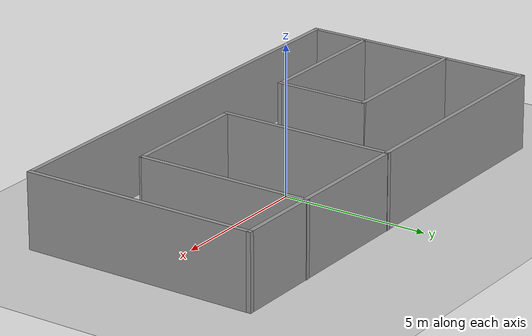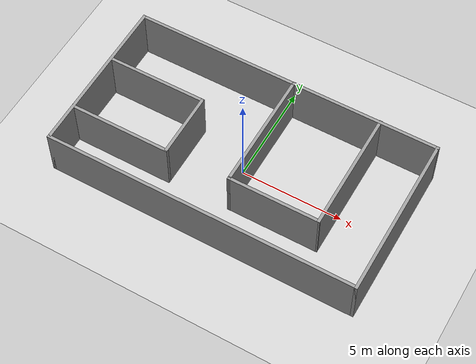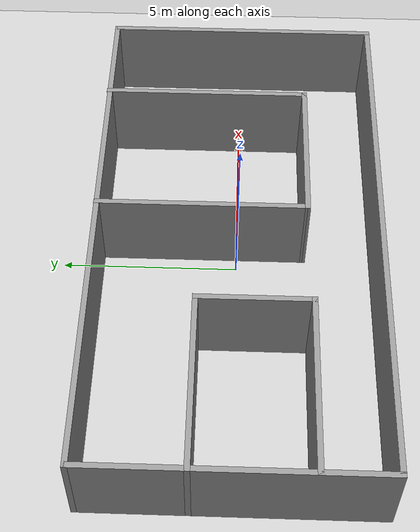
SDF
<sdf version="1.6">
 <world name="default">
  <light name="sun" type="directional">
   <pose>0 0 10 0 -0 0</pose>
   <diffuse>0.8 0.8 0.8 1</diffuse>
   <specular>0.2 0.2 0.2 1</specular>
   <attenuation>
    <range>1000</range>
    <constant>0.9</constant>
    <linear>0.01</linear>
    <quadratic>0.001</quadratic>
   </attenuation>
   <direction>-0.5 0.1 -0.9</direction>
  </light>
  <model name="ground_plane">
   <static>1</static>
   <link name="link">
    <collision name="collision">
     <geometry><plane><normal>0 0 1</normal><size>100 100</size></plane></geometry>
     <surface>
      <contact><collide_bitmask>65535</collide_bitmask></contact>
      <friction><ode><mu>100</mu><mu2>50</mu2></ode></friction>
     </surface>
    </collision>
    <visual name="visual">
     <cast_shadows>0</cast_shadows>
     <geometry><plane><normal>0 0 1</normal><size>100 100</size></plane></geometry>
     <material>
      <script><uri>file://media/materials/scripts/gazebo.material</uri><name>Gazebo/Grey</name></script>
     </material>
    </visual>
   </link>
  </model>
  <gravity>0 0 -9.8</gravity>
  <magnetic_field>6e-06 2.3e-05 -4.2e-05</magnetic_field>
  <atmosphere type="adiabatic"/>
  <physics name="default_physics" default="0" type="ode">
   <max_step_size>0.001</max_step_size>
   <real_time_factor>1</real_time_factor>
   <real_time_update_rate>1000</real_time_update_rate>
  </physics>
  <scene><ambient>0.4 0.4 0.4 1</ambient><background>0.7 0.7 0.7 1</background><shadows>1</shadows></scene>
  <spherical_coordinates>
   <surface_model>EARTH_WGS84</surface_model>
   <latitude_deg>0</latitude_deg>
   <longitude_deg>0</longitude_deg>
   <elevation>0</elevation>
   <heading_deg>0</heading_deg>
  </spherical_coordinates>
  <model name="maze0">
   <link name="Wall_0">
    <collision name="Wall_0_Collision">
     <geometry><box><size>8 0.15 2.5</size></box></geometry>
     <pose>0 0 1.25 0 -0 0</pose>
    </collision>
    <visual name="Wall_0_Visual">
     <pose>0 0 1.25 0 -0 0</pose>
     <geometry><box><size>8 0.15 2.5</size></box></geometry>
     <material>
      <script><uri>file://media/materials/scripts/gazebo.material</uri><name>Gazebo/Grey</name></script>
      <ambient>1 1 1 1</ambient>
     </material>
     <meta><layer>0</layer></meta>
    </visual>
    <pose>-7.55 -0.01 0 0 0 -1.5708</pose>
   </link>
   <link name="Wall_1">
    <collision name="Wall_1_Collision">
     <geometry><box><size>15.25 0.15 2.5</size></box></geometry>
     <pose>0 0 1.25 0 -0 0</pose>
    </collision>
    <visual name="Wall_1_Visual">
     <pose>0 0 1.25 0 -0 0</pose>
     <geometry><box><size>15.25 0.15 2.5</size></box></geometry>
     <material>
      <script><uri>file://media/materials/scripts/gazebo.material</uri><name>Gazebo/Grey</name></script>
      <ambient>1 1 1 1</ambient>
     </material>
     <meta><layer>0</layer></meta>
    </visual>
    <pose>0 -3.935 0 0 -0 0</pose>
   </link>
   <link name="Wall_10">
    <collision name="Wall_10_Collision">
     <geometry><box><size>6 0.15 2.5</size></box></geometry>
     <pose>0 0 1.25 0 -0 0</pose>
    </collision>
    <visual name="Wall_10_Visual">
     <pose>0 0 1.25 0 -0 0</pose>
     <geometry><box><size>6 0.15 2.5</size></box></geometry>
     <material>
      <script><uri>file://media/materials/scripts/gazebo.material</uri><name>Gazebo/Grey</name></script>
      <ambient>1 1 1 1</ambient>
     </material>
     <meta><layer>0</layer></meta>
    </visual>
    <pose>0.41 1 0 0 0 -1.5708</pose>
   </link>
   <link name="Wall_2">
    <collision name="Wall_2_Collision">
     <geometry><box><size>8 0.15 2.5</size></box></geometry>
     <pose>0 0 1.25 0 -0 0</pose>
    </collision>
    <visual name="Wall_2_Visual">
     <pose>0 0 1.25 0 -0 0</pose>
     <geometry><box><size>8 0.15 2.5</size></box></geometry>
     <material>
      <script><uri>file://media/materials/scripts/gazebo.material</uri><name>Gazebo/Grey</name></script>
      <ambient>1 1 1 1</ambient>
     </material>
     <meta><layer>0</layer></meta>
    </visual>
    <pose>7.55 -0.01 0 0 -0 1.5708</pose>
   </link>
   <link name="Wall_22">
    <collision name="Wall_22_Collision">
     <geometry><box><size>6 0.15 2.5</size></box></geometry>
     <pose>0 0 1.25 0 -0 0</pose>
    </collision>
    <visual name="Wall_22_Visual">
     <pose>0 0 1.25 0 -0 0</pose>
     <geometry><box><size>6 0.15 2.5</size></box></geometry>
     <material>
      <script><uri>file://media/materials/scripts/gazebo.material</uri><name>Gazebo/Grey</name></script>
      <ambient>1 1 1 1</ambient>
     </material>
     <meta><layer>0</layer></meta>
    </visual>
    <pose>4.76 1.01 0 0 -0 1.5708</pose>
   </link>
   <link name="Wall_24">
    <collision name="Wall_24_Collision">
     <geometry><box><size>4.50001 0.15 2.5</size></box></geometry>
     <pose>0 0 1.25 0 -0 0</pose>
    </collision>
    <visual name="Wall_24_Visual">
     <pose>0 0 1.25 0 -0 0</pose>
     <geometry><box><size>4.50001 0.15 2.5</size></box></geometry>
     <material>
      <script><uri>file://media/materials/scripts/gazebo.material</uri><name>Gazebo/Grey</name></script>
      <ambient>1 1 1 1</ambient>
     </material>
     <meta><layer>0</layer></meta>
    </visual>
    <pose>2.585 -1.92 0 0 -0 0.002299</pose>
   </link>
   <link name="Wall_3">
    <collision name="Wall_3_Collision">
     <geometry><box><size>15.25 0.15 2.5</size></box></geometry>
     <pose>0 0 1.25 0 -0 0</pose>
    </collision>
    <visual name="Wall_3_Visual">
     <pose>0 0 1.25 0 -0 0</pose>
     <geometry><box><size>15.25 0.15 2.5</size></box></geometry>
     <material>
      <script><uri>file://media/materials/scripts/gazebo.material</uri><name>Gazebo/Grey</name></script>
      <ambient>1 1 1 1</ambient>
     </material>
     <meta><layer>0</layer></meta>
    </visual>
    <pose>0 3.915 0 0 -0 3.14159</pose>
   </link>
   <link name="Wall_30">
    <collision name="Wall_30_Collision">
     <geometry><box><size>5 0.15 2.5</size></box></geometry>
     <pose>0 0 1.25 0 -0 0</pose>
    </collision>
    <visual name="Wall_30_Visual">
     <pose>0 0 1.25 0 -0 0</pose>
     <geometry><box><size>5 0.15 2.5</size></box></geometry>
     <material>
      <script><uri>file://media/materials/scripts/gazebo.material</uri><name>Gazebo/Grey</name></script>
      <ambient>1 1 1 1</ambient>
     </material>
     <meta><layer>0</layer></meta>
    </visual>
    <pose>-5.125 1.065 0 0 -0 0</pose>
   </link>
   <link name="Wall_31">
    <collision name="Wall_31_Collision">
     <geometry><box><size>3.25 0.15 2.5</size></box></geometry>
     <pose>0 0 1.25 0 -0 0</pose>
    </collision>
    <visual name="Wall_31_Visual">
     <pose>0 0 1.25 0 -0 0</pose>
     <geometry><box><size>3.25 0.15 2.5</size></box></geometry>
     <material>
      <script><uri>file://media/materials/scripts/gazebo.material</uri><name>Gazebo/Grey</name></script>
      <ambient>1 1 1 1</ambient>
     </material>
     <meta><layer>0</layer></meta>
    </visual>
    <pose>-2.7 -0.485 0 0 0 -1.5708</pose>
   </link>
   <link name="Wall_32">
    <collision name="Wall_32_Collision">
     <geometry><box><size>5 0.15 2.5</size></box></geometry>
     <pose>0 0 1.25 0 -0 0</pose>
    </collision>
    <visual name="Wall_32_Visual">
     <pose>0 0 1.25 0 -0 0</pose>
     <geometry><box><size>5 0.15 2.5</size></box></geometry>
     <material>
      <script><uri>file://media/materials/scripts/gazebo.material</uri><name>Gazebo/Grey</name></script>
      <ambient>1 1 1 1</ambient>
     </material>
     <meta><layer>0</layer></meta>
    </visual>
    <pose>-5.125 -2.035 0 0 -0 3.14159</pose>
   </link>
   <static>1</static>
  </model>
 </world>
</sdf>
